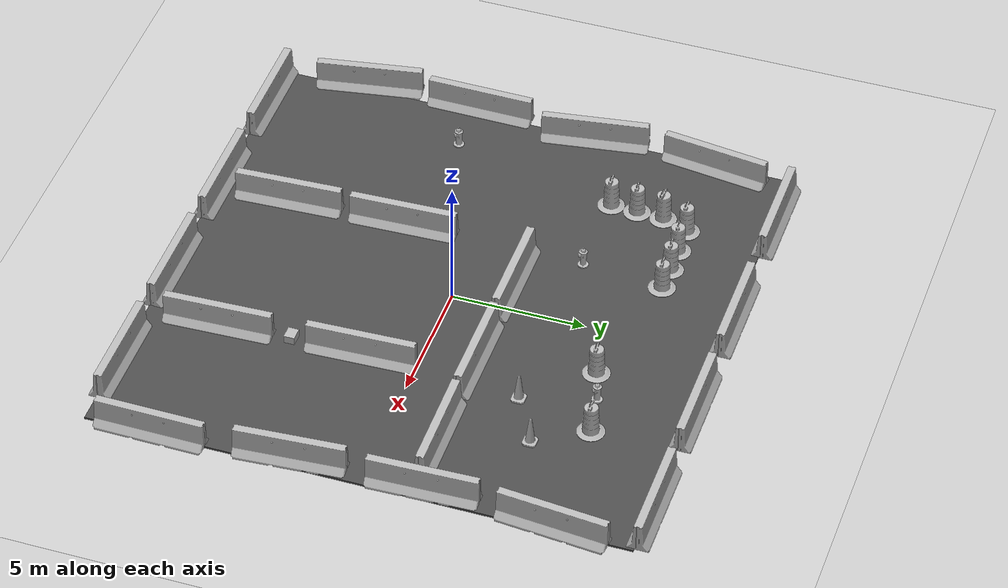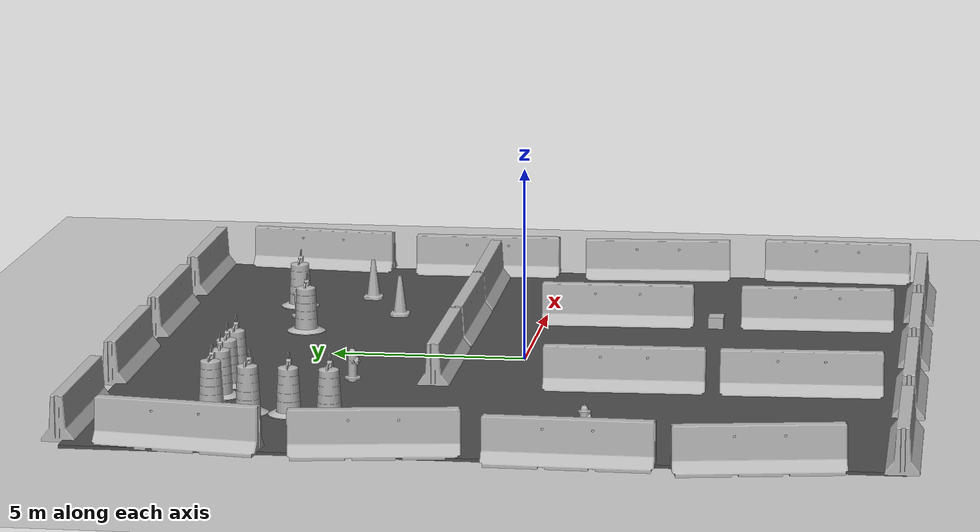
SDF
<sdf version="1.7">
 <world name="default">
  <light name="sun" type="directional">
   <pose>0 0 10 0 -0 0</pose>
   <diffuse>0.8 0.8 0.8 1</diffuse>
   <specular>0.2 0.2 0.2 1</specular>
   <attenuation>
    <range>1000</range>
    <constant>0.9</constant>
    <linear>0.01</linear>
    <quadratic>0.001</quadratic>
   </attenuation>
   <direction>-0.5 0.1 -0.9</direction>
   <spot><inner_angle>0</inner_angle><outer_angle>0</outer_angle><falloff>0</falloff></spot>
  </light>
  <model name="ground_plane">
   <static>1</static>
   <link name="link">
    <collision name="collision">
     <geometry><plane><normal>0 0 1</normal><size>100 100</size></plane></geometry>
     <surface><friction><ode><mu>100</mu><mu2>50</mu2></ode></friction></surface>
    </collision>
    <visual name="visual">
     <cast_shadows>0</cast_shadows>
     <geometry><plane><normal>0 0 1</normal><size>100 100</size></plane></geometry>
     <material>
      <script><uri>file://media/materials/scripts/gazebo.material</uri><name>Gazebo/Grey</name></script>
     </material>
    </visual>
    <velocity_decay><linear>0</linear><angular>0</angular></velocity_decay>
   </link>
  </model>
  <physics type="ode">
   <max_step_size>0.001</max_step_size>
   <real_time_factor>1</real_time_factor>
   <real_time_update_rate>1000</real_time_update_rate>
  </physics>
  <scene><ambient>0.4 0.4 0.4 1</ambient><background>0.7 0.7 0.7 1</background><shadows>1</shadows></scene>
  <model name="jersey_barrier">
   <static>1</static>
   <link name="link">
    <visual name="visual">
     <geometry><mesh><uri>model://jersey_barrier/meshes/jersey_barrier.dae</uri></mesh></geometry>
    </visual>
    <collision name="upright">
     <pose>0 0 0.5715 0 -0 0</pose>
     <geometry><box><size>4.06542 0.3063 1.143</size></box></geometry>
    </collision>
    <collision name="base">
     <pose>0 0 0.032258 0 -0 0</pose>
     <geometry><box><size>4.06542 0.8107 0.064516</size></box></geometry>
    </collision>
    <collision name="base2">
     <pose>0 0 0.1 0 -0 0</pose>
     <geometry><box><size>4.06542 0.65 0.1</size></box></geometry>
    </collision>
    <collision name="base3">
     <pose>0 0 0.2 0 -0 0</pose>
     <geometry><box><size>4.06542 0.5 0.1</size></box></geometry>
    </collision>
    <collision name="left-angle">
     <pose>0 -0.224 0.2401 0.9 -0 0</pose>
     <geometry><box><size>4.06542 0.5 0.064516</size></box></geometry>
    </collision>
    <collision name="right-angle">
     <pose>0 0.224 0.2401 -0.9 0 0</pose>
     <geometry><box><size>4.06542 0.5 0.064516</size></box></geometry>
    </collision>
    <velocity_decay><linear>0</linear><angular>0</angular></velocity_decay>
   </link>
   <pose>-8 -10 0 0 -0 0</pose>
  </model>
  <model name="jersey_barrier_0">
   <static>1</static>
   <link name="link">
    <visual name="visual">
     <geometry><mesh><uri>model://jersey_barrier/meshes/jersey_barrier.dae</uri></mesh></geometry>
    </visual>
    <collision name="upright">
     <pose>0 0 0.5715 0 -0 0</pose>
     <geometry><box><size>4.06542 0.3063 1.143</size></box></geometry>
    </collision>
    <collision name="base">
     <pose>0 0 0.032258 0 -0 0</pose>
     <geometry><box><size>4.06542 0.8107 0.064516</size></box></geometry>
    </collision>
    <collision name="base2">
     <pose>0 0 0.1 0 -0 0</pose>
     <geometry><box><size>4.06542 0.65 0.1</size></box></geometry>
    </collision>
    <collision name="base3">
     <pose>0 0 0.2 0 -0 0</pose>
     <geometry><box><size>4.06542 0.5 0.1</size></box></geometry>
    </collision>
    <collision name="left-angle">
     <pose>0 -0.224 0.2401 0.9 -0 0</pose>
     <geometry><box><size>4.06542 0.5 0.064516</size></box></geometry>
    </collision>
    <collision name="right-angle">
     <pose>0 0.224 0.2401 -0.9 0 0</pose>
     <geometry><box><size>4.06542 0.5 0.064516</size></box></geometry>
    </collision>
    <velocity_decay><linear>0</linear><angular>0</angular></velocity_decay>
   </link>
   <pose>-3 -10 0 0 -0 0</pose>
  </model>
  <model name="jersey_barrier_1">
   <static>1</static>
   <link name="link">
    <visual name="visual">
     <geometry><mesh><uri>model://jersey_barrier/meshes/jersey_barrier.dae</uri></mesh></geometry>
    </visual>
    <collision name="upright">
     <pose>0 0 0.5715 0 -0 0</pose>
     <geometry><box><size>4.06542 0.3063 1.143</size></box></geometry>
    </collision>
    <collision name="base">
     <pose>0 0 0.032258 0 -0 0</pose>
     <geometry><box><size>4.06542 0.8107 0.064516</size></box></geometry>
    </collision>
    <collision name="base2">
     <pose>0 0 0.1 0 -0 0</pose>
     <geometry><box><size>4.06542 0.65 0.1</size></box></geometry>
    </collision>
    <collision name="base3">
     <pose>0 0 0.2 0 -0 0</pose>
     <geometry><box><size>4.06542 0.5 0.1</size></box></geometry>
    </collision>
    <collision name="left-angle">
     <pose>0 -0.224 0.2401 0.9 -0 0</pose>
     <geometry><box><size>4.06542 0.5 0.064516</size></box></geometry>
    </collision>
    <collision name="right-angle">
     <pose>0 0.224 0.2401 -0.9 0 0</pose>
     <geometry><box><size>4.06542 0.5 0.064516</size></box></geometry>
    </collision>
    <velocity_decay><linear>0</linear><angular>0</angular></velocity_decay>
   </link>
   <pose>2 -10 0 0 -0 0</pose>
  </model>
  <model name="jersey_barrier_2">
   <static>1</static>
   <link name="link">
    <visual name="visual">
     <geometry><mesh><uri>model://jersey_barrier/meshes/jersey_barrier.dae</uri></mesh></geometry>
    </visual>
    <collision name="upright">
     <pose>0 0 0.5715 0 -0 0</pose>
     <geometry><box><size>4.06542 0.3063 1.143</size></box></geometry>
    </collision>
    <collision name="base">
     <pose>0 0 0.032258 0 -0 0</pose>
     <geometry><box><size>4.06542 0.8107 0.064516</size></box></geometry>
    </collision>
    <collision name="base2">
     <pose>0 0 0.1 0 -0 0</pose>
     <geometry><box><size>4.06542 0.65 0.1</size></box></geometry>
    </collision>
    <collision name="base3">
     <pose>0 0 0.2 0 -0 0</pose>
     <geometry><box><size>4.06542 0.5 0.1</size></box></geometry>
    </collision>
    <collision name="left-angle">
     <pose>0 -0.224 0.2401 0.9 -0 0</pose>
     <geometry><box><size>4.06542 0.5 0.064516</size></box></geometry>
    </collision>
    <collision name="right-angle">
     <pose>0 0.224 0.2401 -0.9 0 0</pose>
     <geometry><box><size>4.06542 0.5 0.064516</size></box></geometry>
    </collision>
    <velocity_decay><linear>0</linear><angular>0</angular></velocity_decay>
   </link>
   <pose>7 -10 0 0 -0 0</pose>
  </model>
  <model name="jersey_barrier_3">
   <static>1</static>
   <link name="link">
    <visual name="visual">
     <geometry><mesh><uri>model://jersey_barrier/meshes/jersey_barrier.dae</uri></mesh></geometry>
    </visual>
    <collision name="upright">
     <pose>0 0 0.5715 0 -0 0</pose>
     <geometry><box><size>4.06542 0.3063 1.143</size></box></geometry>
    </collision>
    <collision name="base">
     <pose>0 0 0.032258 0 -0 0</pose>
     <geometry><box><size>4.06542 0.8107 0.064516</size></box></geometry>
    </collision>
    <collision name="base2">
     <pose>0 0 0.1 0 -0 0</pose>
     <geometry><box><size>4.06542 0.65 0.1</size></box></geometry>
    </collision>
    <collision name="base3">
     <pose>0 0 0.2 0 -0 0</pose>
     <geometry><box><size>4.06542 0.5 0.1</size></box></geometry>
    </collision>
    <collision name="left-angle">
     <pose>0 -0.224 0.2401 0.9 -0 0</pose>
     <geometry><box><size>4.06542 0.5 0.064516</size></box></geometry>
    </collision>
    <collision name="right-angle">
     <pose>0 0.224 0.2401 -0.9 0 0</pose>
     <geometry><box><size>4.06542 0.5 0.064516</size></box></geometry>
    </collision>
    <velocity_decay><linear>0</linear><angular>0</angular></velocity_decay>
   </link>
   <pose>-7.50675 10 0 0 -0 0</pose>
  </model>
  <model name="jersey_barrier_4">
   <static>1</static>
   <link name="link">
    <visual name="visual">
     <geometry><mesh><uri>model://jersey_barrier/meshes/jersey_barrier.dae</uri></mesh></geometry>
    </visual>
    <collision name="upright">
     <pose>0 0 0.5715 0 -0 0</pose>
     <geometry><box><size>4.06542 0.3063 1.143</size></box></geometry>
    </collision>
    <collision name="base">
     <pose>0 0 0.032258 0 -0 0</pose>
     <geometry><box><size>4.06542 0.8107 0.064516</size></box></geometry>
    </collision>
    <collision name="base2">
     <pose>0 0 0.1 0 -0 0</pose>
     <geometry><box><size>4.06542 0.65 0.1</size></box></geometry>
    </collision>
    <collision name="base3">
     <pose>0 0 0.2 0 -0 0</pose>
     <geometry><box><size>4.06542 0.5 0.1</size></box></geometry>
    </collision>
    <collision name="left-angle">
     <pose>0 -0.224 0.2401 0.9 -0 0</pose>
     <geometry><box><size>4.06542 0.5 0.064516</size></box></geometry>
    </collision>
    <collision name="right-angle">
     <pose>0 0.224 0.2401 -0.9 0 0</pose>
     <geometry><box><size>4.06542 0.5 0.064516</size></box></geometry>
    </collision>
    <velocity_decay><linear>0</linear><angular>0</angular></velocity_decay>
   </link>
   <pose>-2 10 0 0 -0 0</pose>
  </model>
  <model name="jersey_barrier_5">
   <static>1</static>
   <link name="link">
    <visual name="visual">
     <geometry><mesh><uri>model://jersey_barrier/meshes/jersey_barrier.dae</uri></mesh></geometry>
    </visual>
    <collision name="upright">
     <pose>0 0 0.5715 0 -0 0</pose>
     <geometry><box><size>4.06542 0.3063 1.143</size></box></geometry>
    </collision>
    <collision name="base">
     <pose>0 0 0.032258 0 -0 0</pose>
     <geometry><box><size>4.06542 0.8107 0.064516</size></box></geometry>
    </collision>
    <collision name="base2">
     <pose>0 0 0.1 0 -0 0</pose>
     <geometry><box><size>4.06542 0.65 0.1</size></box></geometry>
    </collision>
    <collision name="base3">
     <pose>0 0 0.2 0 -0 0</pose>
     <geometry><box><size>4.06542 0.5 0.1</size></box></geometry>
    </collision>
    <collision name="left-angle">
     <pose>0 -0.224 0.2401 0.9 -0 0</pose>
     <geometry><box><size>4.06542 0.5 0.064516</size></box></geometry>
    </collision>
    <collision name="right-angle">
     <pose>0 0.224 0.2401 -0.9 0 0</pose>
     <geometry><box><size>4.06542 0.5 0.064516</size></box></geometry>
    </collision>
    <velocity_decay><linear>0</linear><angular>0</angular></velocity_decay>
   </link>
   <pose>3 10 0 0 -0 0</pose>
  </model>
  <model name="jersey_barrier_6">
   <static>1</static>
   <link name="link">
    <visual name="visual">
     <geometry><mesh><uri>model://jersey_barrier/meshes/jersey_barrier.dae</uri></mesh></geometry>
    </visual>
    <collision name="upright">
     <pose>0 0 0.5715 0 -0 0</pose>
     <geometry><box><size>4.06542 0.3063 1.143</size></box></geometry>
    </collision>
    <collision name="base">
     <pose>0 0 0.032258 0 -0 0</pose>
     <geometry><box><size>4.06542 0.8107 0.064516</size></box></geometry>
    </collision>
    <collision name="base2">
     <pose>0 0 0.1 0 -0 0</pose>
     <geometry><box><size>4.06542 0.65 0.1</size></box></geometry>
    </collision>
    <collision name="base3">
     <pose>0 0 0.2 0 -0 0</pose>
     <geometry><box><size>4.06542 0.5 0.1</size></box></geometry>
    </collision>
    <collision name="left-angle">
     <pose>0 -0.224 0.2401 0.9 -0 0</pose>
     <geometry><box><size>4.06542 0.5 0.064516</size></box></geometry>
    </collision>
    <collision name="right-angle">
     <pose>0 0.224 0.2401 -0.9 0 0</pose>
     <geometry><box><size>4.06542 0.5 0.064516</size></box></geometry>
    </collision>
    <velocity_decay><linear>0</linear><angular>0</angular></velocity_decay>
   </link>
   <pose>8 10 0 0 -0 0</pose>
  </model>
  <model name="jersey_barrier_7">
   <static>1</static>
   <link name="link">
    <visual name="visual">
     <geometry><mesh><uri>model://jersey_barrier/meshes/jersey_barrier.dae</uri></mesh></geometry>
    </visual>
    <collision name="upright">
     <pose>0 0 0.5715 0 -0 0</pose>
     <geometry><box><size>4.06542 0.3063 1.143</size></box></geometry>
    </collision>
    <collision name="base">
     <pose>0 0 0.032258 0 -0 0</pose>
     <geometry><box><size>4.06542 0.8107 0.064516</size></box></geometry>
    </collision>
    <collision name="base2">
     <pose>0 0 0.1 0 -0 0</pose>
     <geometry><box><size>4.06542 0.65 0.1</size></box></geometry>
    </collision>
    <collision name="base3">
     <pose>0 0 0.2 0 -0 0</pose>
     <geometry><box><size>4.06542 0.5 0.1</size></box></geometry>
    </collision>
    <collision name="left-angle">
     <pose>0 -0.224 0.2401 0.9 -0 0</pose>
     <geometry><box><size>4.06542 0.5 0.064516</size></box></geometry>
    </collision>
    <collision name="right-angle">
     <pose>0 0.224 0.2401 -0.9 0 0</pose>
     <geometry><box><size>4.06542 0.5 0.064516</size></box></geometry>
    </collision>
    <velocity_decay><linear>0</linear><angular>0</angular></velocity_decay>
   </link>
   <pose>9.74902 -2.57759 0 0 -0 1.64</pose>
  </model>
  <model name="jersey_barrier_8">
   <static>1</static>
   <link name="link">
    <visual name="visual">
     <geometry><mesh><uri>model://jersey_barrier/meshes/jersey_barrier.dae</uri></mesh></geometry>
    </visual>
    <collision name="upright">
     <pose>0 0 0.5715 0 -0 0</pose>
     <geometry><box><size>4.06542 0.3063 1.143</size></box></geometry>
    </collision>
    <collision name="base">
     <pose>0 0 0.032258 0 -0 0</pose>
     <geometry><box><size>4.06542 0.8107 0.064516</size></box></geometry>
    </collision>
    <collision name="base2">
     <pose>0 0 0.1 0 -0 0</pose>
     <geometry><box><size>4.06542 0.65 0.1</size></box></geometry>
    </collision>
    <collision name="base3">
     <pose>0 0 0.2 0 -0 0</pose>
     <geometry><box><size>4.06542 0.5 0.1</size></box></geometry>
    </collision>
    <collision name="left-angle">
     <pose>0 -0.224 0.2401 0.9 -0 0</pose>
     <geometry><box><size>4.06542 0.5 0.064516</size></box></geometry>
    </collision>
    <collision name="right-angle">
     <pose>0 0.224 0.2401 -0.9 0 0</pose>
     <geometry><box><size>4.06542 0.5 0.064516</size></box></geometry>
    </collision>
    <velocity_decay><linear>0</linear><angular>0</angular></velocity_decay>
   </link>
   <pose>9.70141 2.24369 0 0 -0 1.6</pose>
  </model>
  <model name="jersey_barrier_9">
   <static>1</static>
   <link name="link">
    <visual name="visual">
     <geometry><mesh><uri>model://jersey_barrier/meshes/jersey_barrier.dae</uri></mesh></geometry>
    </visual>
    <collision name="upright">
     <pose>0 0 0.5715 0 -0 0</pose>
     <geometry><box><size>4.06542 0.3063 1.143</size></box></geometry>
    </collision>
    <collision name="base">
     <pose>0 0 0.032258 0 -0 0</pose>
     <geometry><box><size>4.06542 0.8107 0.064516</size></box></geometry>
    </collision>
    <collision name="base2">
     <pose>0 0 0.1 0 -0 0</pose>
     <geometry><box><size>4.06542 0.65 0.1</size></box></geometry>
    </collision>
    <collision name="base3">
     <pose>0 0 0.2 0 -0 0</pose>
     <geometry><box><size>4.06542 0.5 0.1</size></box></geometry>
    </collision>
    <collision name="left-angle">
     <pose>0 -0.224 0.2401 0.9 -0 0</pose>
     <geometry><box><size>4.06542 0.5 0.064516</size></box></geometry>
    </collision>
    <collision name="right-angle">
     <pose>0 0.224 0.2401 -0.9 0 0</pose>
     <geometry><box><size>4.06542 0.5 0.064516</size></box></geometry>
    </collision>
    <velocity_decay><linear>0</linear><angular>0</angular></velocity_decay>
   </link>
   <pose>-10.0607 -6.69856 0 0 0 -1.4</pose>
  </model>
  <model name="jersey_barrier_10">
   <static>1</static>
   <link name="link">
    <visual name="visual">
     <geometry><mesh><uri>model://jersey_barrier/meshes/jersey_barrier.dae</uri></mesh></geometry>
    </visual>
    <collision name="upright">
     <pose>0 0 0.5715 0 -0 0</pose>
     <geometry><box><size>4.06542 0.3063 1.143</size></box></geometry>
    </collision>
    <collision name="base">
     <pose>0 0 0.032258 0 -0 0</pose>
     <geometry><box><size>4.06542 0.8107 0.064516</size></box></geometry>
    </collision>
    <collision name="base2">
     <pose>0 0 0.1 0 -0 0</pose>
     <geometry><box><size>4.06542 0.65 0.1</size></box></geometry>
    </collision>
    <collision name="base3">
     <pose>0 0 0.2 0 -0 0</pose>
     <geometry><box><size>4.06542 0.5 0.1</size></box></geometry>
    </collision>
    <collision name="left-angle">
     <pose>0 -0.224 0.2401 0.9 -0 0</pose>
     <geometry><box><size>4.06542 0.5 0.064516</size></box></geometry>
    </collision>
    <collision name="right-angle">
     <pose>0 0.224 0.2401 -0.9 0 0</pose>
     <geometry><box><size>4.06542 0.5 0.064516</size></box></geometry>
    </collision>
    <velocity_decay><linear>0</linear><angular>0</angular></velocity_decay>
   </link>
   <pose>-10.0774 -2.27159 0 0 -0 1.56</pose>
  </model>
  <model name="jersey_barrier_11">
   <static>1</static>
   <link name="link">
    <visual name="visual">
     <geometry><mesh><uri>model://jersey_barrier/meshes/jersey_barrier.dae</uri></mesh></geometry>
    </visual>
    <collision name="upright">
     <pose>0 0 0.5715 0 -0 0</pose>
     <geometry><box><size>4.06542 0.3063 1.143</size></box></geometry>
    </collision>
    <collision name="base">
     <pose>0 0 0.032258 0 -0 0</pose>
     <geometry><box><size>4.06542 0.8107 0.064516</size></box></geometry>
    </collision>
    <collision name="base2">
     <pose>0 0 0.1 0 -0 0</pose>
     <geometry><box><size>4.06542 0.65 0.1</size></box></geometry>
    </collision>
    <collision name="base3">
     <pose>0 0 0.2 0 -0 0</pose>
     <geometry><box><size>4.06542 0.5 0.1</size></box></geometry>
    </collision>
    <collision name="left-angle">
     <pose>0 -0.224 0.2401 0.9 -0 0</pose>
     <geometry><box><size>4.06542 0.5 0.064516</size></box></geometry>
    </collision>
    <collision name="right-angle">
     <pose>0 0.224 0.2401 -0.9 0 0</pose>
     <geometry><box><size>4.06542 0.5 0.064516</size></box></geometry>
    </collision>
    <velocity_decay><linear>0</linear><angular>0</angular></velocity_decay>
   </link>
   <pose>-9.77013 2.34791 0 0 -0 1.72</pose>
  </model>
  <model name="jersey_barrier_12">
   <static>1</static>
   <link name="link">
    <visual name="visual">
     <geometry><mesh><uri>model://jersey_barrier/meshes/jersey_barrier.dae</uri></mesh></geometry>
    </visual>
    <collision name="upright">
     <pose>0 0 0.5715 0 -0 0</pose>
     <geometry><box><size>4.06542 0.3063 1.143</size></box></geometry>
    </collision>
    <collision name="base">
     <pose>0 0 0.032258 0 -0 0</pose>
     <geometry><box><size>4.06542 0.8107 0.064516</size></box></geometry>
    </collision>
    <collision name="base2">
     <pose>0 0 0.1 0 -0 0</pose>
     <geometry><box><size>4.06542 0.65 0.1</size></box></geometry>
    </collision>
    <collision name="base3">
     <pose>0 0 0.2 0 -0 0</pose>
     <geometry><box><size>4.06542 0.5 0.1</size></box></geometry>
    </collision>
    <collision name="left-angle">
     <pose>0 -0.224 0.2401 0.9 -0 0</pose>
     <geometry><box><size>4.06542 0.5 0.064516</size></box></geometry>
    </collision>
    <collision name="right-angle">
     <pose>0 0.224 0.2401 -0.9 0 0</pose>
     <geometry><box><size>4.06542 0.5 0.064516</size></box></geometry>
    </collision>
    <velocity_decay><linear>0</linear><angular>0</angular></velocity_decay>
   </link>
   <pose>10.0879 -7.62159 0 0 -0 1.56</pose>
  </model>
  <model name="jersey_barrier_13">
   <static>1</static>
   <link name="link">
    <visual name="visual">
     <geometry><mesh><uri>model://jersey_barrier/meshes/jersey_barrier.dae</uri></mesh></geometry>
    </visual>
    <collision name="upright">
     <pose>0 0 0.5715 0 -0 0</pose>
     <geometry><box><size>4.06542 0.3063 1.143</size></box></geometry>
    </collision>
    <collision name="base">
     <pose>0 0 0.032258 0 -0 0</pose>
     <geometry><box><size>4.06542 0.8107 0.064516</size></box></geometry>
    </collision>
    <collision name="base2">
     <pose>0 0 0.1 0 -0 0</pose>
     <geometry><box><size>4.06542 0.65 0.1</size></box></geometry>
    </collision>
    <collision name="base3">
     <pose>0 0 0.2 0 -0 0</pose>
     <geometry><box><size>4.06542 0.5 0.1</size></box></geometry>
    </collision>
    <collision name="left-angle">
     <pose>0 -0.224 0.2401 0.9 -0 0</pose>
     <geometry><box><size>4.06542 0.5 0.064516</size></box></geometry>
    </collision>
    <collision name="right-angle">
     <pose>0 0.224 0.2401 -0.9 0 0</pose>
     <geometry><box><size>4.06542 0.5 0.064516</size></box></geometry>
    </collision>
    <velocity_decay><linear>0</linear><angular>0</angular></velocity_decay>
   </link>
   <pose>10 7 0 0 -0 1.48</pose>
  </model>
  <model name="jersey_barrier_14">
   <static>1</static>
   <link name="link">
    <visual name="visual">
     <geometry><mesh><uri>model://jersey_barrier/meshes/jersey_barrier.dae</uri></mesh></geometry>
    </visual>
    <collision name="upright">
     <pose>0 0 0.5715 0 -0 0</pose>
     <geometry><box><size>4.06542 0.3063 1.143</size></box></geometry>
    </collision>
    <collision name="base">
     <pose>0 0 0.032258 0 -0 0</pose>
     <geometry><box><size>4.06542 0.8107 0.064516</size></box></geometry>
    </collision>
    <collision name="base2">
     <pose>0 0 0.1 0 -0 0</pose>
     <geometry><box><size>4.06542 0.65 0.1</size></box></geometry>
    </collision>
    <collision name="base3">
     <pose>0 0 0.2 0 -0 0</pose>
     <geometry><box><size>4.06542 0.5 0.1</size></box></geometry>
    </collision>
    <collision name="left-angle">
     <pose>0 -0.224 0.2401 0.9 -0 0</pose>
     <geometry><box><size>4.06542 0.5 0.064516</size></box></geometry>
    </collision>
    <collision name="right-angle">
     <pose>0 0.224 0.2401 -0.9 0 0</pose>
     <geometry><box><size>4.06542 0.5 0.064516</size></box></geometry>
    </collision>
    <velocity_decay><linear>0</linear><angular>0</angular></velocity_decay>
   </link>
   <pose>-9.64482 7.05946 0 0 -0 1.44</pose>
  </model>
  <model name="fire_hydrant">
   <static>1</static>
   <link name="link">
    <collision name="collision">
     <geometry><mesh><uri>model://fire_hydrant/meshes/fire_hydrant.dae</uri></mesh></geometry>
    </collision>
    <visual name="visual">
     <geometry><mesh><uri>model://fire_hydrant/meshes/fire_hydrant.dae</uri></mesh></geometry>
    </visual>
    <velocity_decay><linear>0</linear><angular>0</angular></velocity_decay>
   </link>
   <pose>3.56194 6.57655 0 0 -0 0</pose>
  </model>
  <model name="fire_hydrant_0">
   <static>1</static>
   <link name="link">
    <collision name="collision">
     <geometry><mesh><uri>model://fire_hydrant/meshes/fire_hydrant.dae</uri></mesh></geometry>
    </collision>
    <visual name="visual">
     <geometry><mesh><uri>model://fire_hydrant/meshes/fire_hydrant.dae</uri></mesh></geometry>
    </visual>
    <velocity_decay><linear>0</linear><angular>0</angular></velocity_decay>
   </link>
   <pose>-3 4 0 0 -0 0</pose>
  </model>
  <model name="fire_hydrant_1">
   <static>1</static>
   <link name="link">
    <collision name="collision">
     <geometry><mesh><uri>model://fire_hydrant/meshes/fire_hydrant.dae</uri></mesh></geometry>
    </collision>
    <visual name="visual">
     <geometry><mesh><uri>model://fire_hydrant/meshes/fire_hydrant.dae</uri></mesh></geometry>
    </visual>
    <velocity_decay><linear>0</linear><angular>0</angular></velocity_decay>
   </link>
   <pose>-7.90686 -2.41363 0 0 -0 0</pose>
  </model>
  <model name="jersey_barrier_15">
   <static>1</static>
   <link name="link">
    <visual name="visual">
     <geometry><mesh><uri>model://jersey_barrier/meshes/jersey_barrier.dae</uri></mesh></geometry>
    </visual>
    <collision name="upright">
     <pose>0 0 0.5715 0 -0 0</pose>
     <geometry><box><size>4.06542 0.3063 1.143</size></box></geometry>
    </collision>
    <collision name="base">
     <pose>0 0 0.032258 0 -0 0</pose>
     <geometry><box><size>4.06542 0.8107 0.064516</size></box></geometry>
    </collision>
    <collision name="base2">
     <pose>0 0 0.1 0 -0 0</pose>
     <geometry><box><size>4.06542 0.65 0.1</size></box></geometry>
    </collision>
    <collision name="base3">
     <pose>0 0 0.2 0 -0 0</pose>
     <geometry><box><size>4.06542 0.5 0.1</size></box></geometry>
    </collision>
    <collision name="left-angle">
     <pose>0 -0.224 0.2401 0.9 -0 0</pose>
     <geometry><box><size>4.06542 0.5 0.064516</size></box></geometry>
    </collision>
    <collision name="right-angle">
     <pose>0 0.224 0.2401 -0.9 0 0</pose>
     <geometry><box><size>4.06542 0.5 0.064516</size></box></geometry>
    </collision>
    <velocity_decay><linear>0</linear><angular>0</angular></velocity_decay>
   </link>
   <pose>7.19227 1.93681 0 0 0 -3.1317</pose>
  </model>
  <model name="Construction Cone">
   <link name="link">
    <collision name="collision">
     <geometry>
      <mesh><scale>10 10 10</scale><uri>model://construction_cone/meshes/construction_cone.dae</uri></mesh>
     </geometry>
    </collision>
    <visual name="visual">
     <geometry>
      <mesh><scale>10 10 10</scale><uri>model://construction_cone/meshes/construction_cone.dae</uri></mesh>
     </geometry>
    </visual>
    <velocity_decay><linear>0</linear><angular>0</angular></velocity_decay>
    <inertial>
     <inertia><ixx>1</ixx><ixy>0</ixy><ixz>0</ixz><iyy>1</iyy><iyz>0</iyz><izz>1</izz></inertia>
     <mass>1</mass>
    </inertial>
   </link>
   <pose>6.25135 4.98276 0.05 1e-06 -1e-06 0</pose>
   <static>0</static>
  </model>
  <model name="Construction Barrel">
   <link name="link">
    <inertial>
     <pose>0 0 0.4 0 -0 0</pose>
     <mass>500</mass>
     <inertia><ixx>51.2096</ixx><iyy>51.2096</iyy><izz>25</izz><ixy>0</ixy><ixz>0</ixz><iyz>0</iyz></inertia>
    </inertial>
    <collision name="collision">
     <geometry><mesh><uri>model://construction_barrel/meshes/construction_barrel.dae</uri></mesh></geometry>
    </collision>
    <visual name="visual">
     <geometry><mesh><uri>model://construction_barrel/meshes/construction_barrel.dae</uri></mesh></geometry>
    </visual>
    <velocity_decay><linear>0</linear><angular>0</angular></velocity_decay>
   </link>
   <pose>5.0829 6.82068 0.049999 3e-06 -0 0.00059</pose>
   <static>0</static>
  </model>
  <model name="Construction Cone_0">
   <link name="link">
    <collision name="collision">
     <geometry>
      <mesh><scale>10 10 10</scale><uri>model://construction_cone/meshes/construction_cone.dae</uri></mesh>
     </geometry>
    </collision>
    <visual name="visual">
     <geometry>
      <mesh><scale>10 10 10</scale><uri>model://construction_cone/meshes/construction_cone.dae</uri></mesh>
     </geometry>
    </visual>
    <velocity_decay><linear>0</linear><angular>0</angular></velocity_decay>
    <inertial>
     <inertia><ixx>1</ixx><ixy>0</ixy><ixz>0</ixz><iyy>1</iyy><iyz>0</iyz><izz>1</izz></inertia>
     <mass>1</mass>
    </inertial>
   </link>
   <pose>4.32471 3.94071 0.05 -0 -0 -0.007012</pose>
   <static>0</static>
  </model>
  <model name="Construction Barrel_0">
   <link name="link">
    <inertial>
     <pose>0 0 0.4 0 -0 0</pose>
     <mass>500</mass>
     <inertia><ixx>51.2096</ixx><iyy>51.2096</iyy><izz>25</izz><ixy>0</ixy><ixz>0</ixz><iyz>0</iyz></inertia>
    </inertial>
    <collision name="collision">
     <geometry><mesh><uri>model://construction_barrel/meshes/construction_barrel.dae</uri></mesh></geometry>
    </collision>
    <visual name="visual">
     <geometry><mesh><uri>model://construction_barrel/meshes/construction_barrel.dae</uri></mesh></geometry>
    </visual>
    <velocity_decay><linear>0</linear><angular>0</angular></velocity_decay>
   </link>
   <pose>2.21383 6.13016 0.049999 -1e-06 -2e-06 0.000223</pose>
   <static>0</static>
  </model>
  <model name="asphalt_plane">
   <static>1</static>
   <link name="link">
    <collision name="collision"><geometry><box><size>20 20 0.1</size></box></geometry></collision>
    <visual name="visual">
     <cast_shadows>0</cast_shadows>
     <geometry><box><size>20 20 0.1</size></box></geometry>
     <material>
      <script>
       <uri>model://asphalt_plane/materials/scripts</uri>
       <uri>model://asphalt_plane/materials/textures</uri>
       <name>vrc/asphalt</name>
      </script>
     </material>
    </visual>
    <velocity_decay><linear>0</linear><angular>0</angular></velocity_decay>
   </link>
   <pose>0.076733 -0.110379 0 0 -0 0</pose>
  </model>
  <model name="Construction Barrel_1">
   <link name="link">
    <inertial>
     <pose>0 0 0.4 0 -0 0</pose>
     <mass>500</mass>
     <inertia><ixx>51.2096</ixx><iyy>51.2096</iyy><izz>25</izz><ixy>0</ixy><ixz>0</ixz><iyz>0</iyz></inertia>
    </inertial>
    <collision name="collision">
     <geometry><mesh><uri>model://construction_barrel/meshes/construction_barrel.dae</uri></mesh></geometry>
    </collision>
    <visual name="visual">
     <geometry><mesh><uri>model://construction_barrel/meshes/construction_barrel.dae</uri></mesh></geometry>
    </visual>
    <velocity_decay><linear>0</linear><angular>0</angular></velocity_decay>
   </link>
   <pose>-6.50469 3.98269 0.049999 -1e-06 -3e-06 -0.009416</pose>
   <static>0</static>
  </model>
  <model name="Construction Barrel_2">
   <link name="link">
    <inertial>
     <pose>0 0 0.4 0 -0 0</pose>
     <mass>500</mass>
     <inertia><ixx>51.2096</ixx><iyy>51.2096</iyy><izz>25</izz><ixy>0</ixy><ixz>0</ixz><iyz>0</iyz></inertia>
    </inertial>
    <collision name="collision">
     <geometry><mesh><uri>model://construction_barrel/meshes/construction_barrel.dae</uri></mesh></geometry>
    </collision>
    <visual name="visual">
     <geometry><mesh><uri>model://construction_barrel/meshes/construction_barrel.dae</uri></mesh></geometry>
    </visual>
    <velocity_decay><linear>0</linear><angular>0</angular></velocity_decay>
   </link>
   <pose>-6.45052 4.99649 0.049999 4e-06 -0 0.06514</pose>
   <static>0</static>
  </model>
  <model name="Construction Barrel_3">
   <link name="link">
    <inertial>
     <pose>0 0 0.4 0 -0 0</pose>
     <mass>500</mass>
     <inertia><ixx>51.2096</ixx><iyy>51.2096</iyy><izz>25</izz><ixy>0</ixy><ixz>0</ixz><iyz>0</iyz></inertia>
    </inertial>
    <collision name="collision">
     <geometry><mesh><uri>model://construction_barrel/meshes/construction_barrel.dae</uri></mesh></geometry>
    </collision>
    <visual name="visual">
     <geometry><mesh><uri>model://construction_barrel/meshes/construction_barrel.dae</uri></mesh></geometry>
    </visual>
    <velocity_decay><linear>0</linear><angular>0</angular></velocity_decay>
   </link>
   <pose>-6.40163 6.01122 0.049999 -1e-06 -5e-06 -0.120611</pose>
   <static>0</static>
  </model>
  <model name="Construction Barrel_4">
   <link name="link">
    <inertial>
     <pose>0 0 0.4 0 -0 0</pose>
     <mass>500</mass>
     <inertia><ixx>51.2096</ixx><iyy>51.2096</iyy><izz>25</izz><ixy>0</ixy><ixz>0</ixz><iyz>0</iyz></inertia>
    </inertial>
    <collision name="collision">
     <geometry><mesh><uri>model://construction_barrel/meshes/construction_barrel.dae</uri></mesh></geometry>
    </collision>
    <visual name="visual">
     <geometry><mesh><uri>model://construction_barrel/meshes/construction_barrel.dae</uri></mesh></geometry>
    </visual>
    <velocity_decay><linear>0</linear><angular>0</angular></velocity_decay>
   </link>
   <pose>-6.00621 7.00888 0.049999 -1e-06 -2e-06 -0.04937</pose>
   <static>0</static>
  </model>
  <model name="Construction Barrel_5">
   <link name="link">
    <inertial>
     <pose>0 0 0.4 0 -0 0</pose>
     <mass>500</mass>
     <inertia><ixx>51.2096</ixx><iyy>51.2096</iyy><izz>25</izz><ixy>0</ixy><ixz>0</ixz><iyz>0</iyz></inertia>
    </inertial>
    <collision name="collision">
     <geometry><mesh><uri>model://construction_barrel/meshes/construction_barrel.dae</uri></mesh></geometry>
    </collision>
    <visual name="visual">
     <geometry><mesh><uri>model://construction_barrel/meshes/construction_barrel.dae</uri></mesh></geometry>
    </visual>
    <velocity_decay><linear>0</linear><angular>0</angular></velocity_decay>
   </link>
   <pose>-4.87553 7.00823 0.049999 3e-06 -0 0.146257</pose>
   <static>0</static>
  </model>
  <model name="Construction Barrel_6">
   <link name="link">
    <inertial>
     <pose>0 0 0.4 0 -0 0</pose>
     <mass>500</mass>
     <inertia><ixx>51.2096</ixx><iyy>51.2096</iyy><izz>25</izz><ixy>0</ixy><ixz>0</ixz><iyz>0</iyz></inertia>
    </inertial>
    <collision name="collision">
     <geometry><mesh><uri>model://construction_barrel/meshes/construction_barrel.dae</uri></mesh></geometry>
    </collision>
    <visual name="visual">
     <geometry><mesh><uri>model://construction_barrel/meshes/construction_barrel.dae</uri></mesh></geometry>
    </visual>
    <velocity_decay><linear>0</linear><angular>0</angular></velocity_decay>
   </link>
   <pose>-3.8061 7.0468 0.061792 -0.003046 -0.023126 0.053021</pose>
   <static>0</static>
  </model>
  <model name="Construction Barrel_7">
   <link name="link">
    <inertial>
     <pose>0 0 0.4 0 -0 0</pose>
     <mass>500</mass>
     <inertia><ixx>51.2096</ixx><iyy>51.2096</iyy><izz>25</izz><ixy>0</ixy><ixz>0</ixz><iyz>0</iyz></inertia>
    </inertial>
    <collision name="collision">
     <geometry><mesh><uri>model://construction_barrel/meshes/construction_barrel.dae</uri></mesh></geometry>
    </collision>
    <visual name="visual">
     <geometry><mesh><uri>model://construction_barrel/meshes/construction_barrel.dae</uri></mesh></geometry>
    </visual>
    <velocity_decay><linear>0</linear><angular>0</angular></velocity_decay>
   </link>
   <pose>-2.80099 7.0401 0.049985 -3e-06 -1.6e-05 0.011703</pose>
   <static>0</static>
  </model>
  <gravity>0 0 -9.8</gravity>
  <magnetic_field>6e-06 2.3e-05 -4.2e-05</magnetic_field>
  <atmosphere type="adiabatic"/>
  <audio><device>default</device></audio>
  <spherical_coordinates>
   <surface_model>EARTH_WGS84</surface_model>
   <latitude_deg>0</latitude_deg>
   <longitude_deg>0</longitude_deg>
   <elevation>0</elevation>
   <heading_deg>0</heading_deg>
  </spherical_coordinates>
  <model name="jersey_barrier_16">
   <static>1</static>
   <link name="link">
    <visual name="visual">
     <geometry><mesh><uri>model://jersey_barrier/meshes/jersey_barrier.dae</uri></mesh></geometry>
    </visual>
    <collision name="upright">
     <pose>0 0 0.5715 0 -0 0</pose>
     <geometry><box><size>4.06542 0.3063 1.143</size></box></geometry>
    </collision>
    <collision name="base">
     <pose>0 0 0.032258 0 -0 0</pose>
     <geometry><box><size>4.06542 0.8107 0.064516</size></box></geometry>
    </collision>
    <collision name="base2">
     <pose>0 0 0.1 0 -0 0</pose>
     <geometry><box><size>4.06542 0.65 0.1</size></box></geometry>
    </collision>
    <collision name="base3">
     <pose>0 0 0.2 0 -0 0</pose>
     <geometry><box><size>4.06542 0.5 0.1</size></box></geometry>
    </collision>
    <collision name="left-angle">
     <pose>0 -0.224 0.2401 0.9 -0 0</pose>
     <geometry><box><size>4.06542 0.5 0.064516</size></box></geometry>
    </collision>
    <collision name="right-angle">
     <pose>0 0.224 0.2401 -0.9 0 0</pose>
     <geometry><box><size>4.06542 0.5 0.064516</size></box></geometry>
    </collision>
   </link>
   <pose>2.98614 1.91127 0 0 -0 0</pose>
  </model>
  <model name="jersey_barrier_17">
   <static>1</static>
   <link name="link">
    <visual name="visual">
     <geometry><mesh><uri>model://jersey_barrier/meshes/jersey_barrier.dae</uri></mesh></geometry>
    </visual>
    <collision name="upright">
     <pose>0 0 0.5715 0 -0 0</pose>
     <geometry><box><size>4.06542 0.3063 1.143</size></box></geometry>
    </collision>
    <collision name="base">
     <pose>0 0 0.032258 0 -0 0</pose>
     <geometry><box><size>4.06542 0.8107 0.064516</size></box></geometry>
    </collision>
    <collision name="base2">
     <pose>0 0 0.1 0 -0 0</pose>
     <geometry><box><size>4.06542 0.65 0.1</size></box></geometry>
    </collision>
    <collision name="base3">
     <pose>0 0 0.2 0 -0 0</pose>
     <geometry><box><size>4.06542 0.5 0.1</size></box></geometry>
    </collision>
    <collision name="left-angle">
     <pose>0 -0.224 0.2401 0.9 -0 0</pose>
     <geometry><box><size>4.06542 0.5 0.064516</size></box></geometry>
    </collision>
    <collision name="right-angle">
     <pose>0 0.224 0.2401 -0.9 0 0</pose>
     <geometry><box><size>4.06542 0.5 0.064516</size></box></geometry>
    </collision>
   </link>
   <pose>-1.23498 1.91916 0 0 -0 0</pose>
  </model>
  <model name="jersey_barrier_18">
   <static>1</static>
   <link name="link">
    <visual name="visual">
     <geometry><mesh><uri>model://jersey_barrier/meshes/jersey_barrier.dae</uri></mesh></geometry>
    </visual>
    <collision name="upright">
     <pose>0 0 0.5715 0 -0 0</pose>
     <geometry><box><size>4.06542 0.3063 1.143</size></box></geometry>
    </collision>
    <collision name="base">
     <pose>0 0 0.032258 0 -0 0</pose>
     <geometry><box><size>4.06542 0.8107 0.064516</size></box></geometry>
    </collision>
    <collision name="base2">
     <pose>0 0 0.1 0 -0 0</pose>
     <geometry><box><size>4.06542 0.65 0.1</size></box></geometry>
    </collision>
    <collision name="base3">
     <pose>0 0 0.2 0 -0 0</pose>
     <geometry><box><size>4.06542 0.5 0.1</size></box></geometry>
    </collision>
    <collision name="left-angle">
     <pose>0 -0.224 0.2401 0.9 -0 0</pose>
     <geometry><box><size>4.06542 0.5 0.064516</size></box></geometry>
    </collision>
    <collision name="right-angle">
     <pose>0 0.224 0.2401 -0.9 0 0</pose>
     <geometry><box><size>4.06542 0.5 0.064516</size></box></geometry>
    </collision>
   </link>
   <pose>4.23813 -7.34612 0 0 0 -1.53521</pose>
  </model>
  <model name="jersey_barrier_18_clone">
   <static>1</static>
   <link name="link">
    <visual name="visual">
     <geometry><mesh><uri>model://jersey_barrier/meshes/jersey_barrier.dae</uri></mesh></geometry>
    </visual>
    <collision name="upright">
     <pose>0 0 0.5715 0 -0 0</pose>
     <geometry><box><size>4.06542 0.3063 1.143</size></box></geometry>
    </collision>
    <collision name="base">
     <pose>0 0 0.032258 0 -0 0</pose>
     <geometry><box><size>4.06542 0.8107 0.064516</size></box></geometry>
    </collision>
    <collision name="base2">
     <pose>0 0 0.1 0 -0 0</pose>
     <geometry><box><size>4.06542 0.65 0.1</size></box></geometry>
    </collision>
    <collision name="base3">
     <pose>0 0 0.2 0 -0 0</pose>
     <geometry><box><size>4.06542 0.5 0.1</size></box></geometry>
    </collision>
    <collision name="left-angle">
     <pose>0 -0.224 0.2401 0.9 -0 0</pose>
     <geometry><box><size>4.06542 0.5 0.064516</size></box></geometry>
    </collision>
    <collision name="right-angle">
     <pose>0 0.224 0.2401 -0.9 0 0</pose>
     <geometry><box><size>4.06542 0.5 0.064516</size></box></geometry>
    </collision>
   </link>
   <pose>4.05617 -2.01578 0 0 0 -1.53521</pose>
  </model>
  <model name="jersey_barrier_19">
   <static>1</static>
   <link name="link">
    <visual name="visual">
     <geometry><mesh><uri>model://jersey_barrier/meshes/jersey_barrier.dae</uri></mesh></geometry>
    </visual>
    <collision name="upright">
     <pose>0 0 0.5715 0 -0 0</pose>
     <geometry><box><size>4.06542 0.3063 1.143</size></box></geometry>
    </collision>
    <collision name="base">
     <pose>0 0 0.032258 0 -0 0</pose>
     <geometry><box><size>4.06542 0.8107 0.064516</size></box></geometry>
    </collision>
    <collision name="base2">
     <pose>0 0 0.1 0 -0 0</pose>
     <geometry><box><size>4.06542 0.65 0.1</size></box></geometry>
    </collision>
    <collision name="base3">
     <pose>0 0 0.2 0 -0 0</pose>
     <geometry><box><size>4.06542 0.5 0.1</size></box></geometry>
    </collision>
    <collision name="left-angle">
     <pose>0 -0.224 0.2401 0.9 -0 0</pose>
     <geometry><box><size>4.06542 0.5 0.064516</size></box></geometry>
    </collision>
    <collision name="right-angle">
     <pose>0 0.224 0.2401 -0.9 0 0</pose>
     <geometry><box><size>4.06542 0.5 0.064516</size></box></geometry>
    </collision>
   </link>
   <pose>-2.8608 -7.29744 0 0 0 -1.52736</pose>
  </model>
  <model name="jersey_barrier_20">
   <static>1</static>
   <link name="link">
    <visual name="visual">
     <geometry><mesh><uri>model://jersey_barrier/meshes/jersey_barrier.dae</uri></mesh></geometry>
    </visual>
    <collision name="upright">
     <pose>0 0 0.5715 0 -0 0</pose>
     <geometry><box><size>4.06542 0.3063 1.143</size></box></geometry>
    </collision>
    <collision name="base">
     <pose>0 0 0.032258 0 -0 0</pose>
     <geometry><box><size>4.06542 0.8107 0.064516</size></box></geometry>
    </collision>
    <collision name="base2">
     <pose>0 0 0.1 0 -0 0</pose>
     <geometry><box><size>4.06542 0.65 0.1</size></box></geometry>
    </collision>
    <collision name="base3">
     <pose>0 0 0.2 0 -0 0</pose>
     <geometry><box><size>4.06542 0.5 0.1</size></box></geometry>
    </collision>
    <collision name="left-angle">
     <pose>0 -0.224 0.2401 0.9 -0 0</pose>
     <geometry><box><size>4.06542 0.5 0.064516</size></box></geometry>
    </collision>
    <collision name="right-angle">
     <pose>0 0.224 0.2401 -0.9 0 0</pose>
     <geometry><box><size>4.06542 0.5 0.064516</size></box></geometry>
    </collision>
   </link>
   <pose>-2.9575 -2.8748 0 0 0 -1.537</pose>
  </model>
  <model name="cardboard_box">
   <link name="link">
    <inertial>
     <mass>1</mass>
     <inertia>
      <ixx>0.0208333</ixx>
      <ixy>0</ixy>
      <ixz>0</ixz>
      <iyy>0.0283333</iyy>
      <iyz>0</iyz>
      <izz>0.0341667</izz>
     </inertia>
    </inertial>
    <visual name="visual">
     <pose>0 0 -0.15 0 -0 0</pose>
     <geometry>
      <mesh><uri>model://cardboard_box/meshes/cardboard_box.dae</uri><scale>1.25932 1.00745 0.755591</scale></mesh>
     </geometry>
     <material><shader type="pixel"><normal_map>__default__</normal_map></shader></material>
    </visual>
    <collision name="collision">
     <geometry><box><size>0.5 0.4 0.3</size></box></geometry>
     <surface>
      <friction>
       <ode><mu>1</mu><mu2>1</mu2><fdir1>0 0 0</fdir1><slip1>0</slip1><slip2>0</slip2></ode>
       <torsional>
        <coefficient>1</coefficient>
        <patch_radius>0</patch_radius>
        <surface_radius>0</surface_radius>
        <use_patch_radius>1</use_patch_radius>
        <ode><slip>0</slip></ode>
       </torsional>
      </friction>
      <bounce><restitution_coefficient>0</restitution_coefficient><threshold>1e+06</threshold></bounce>
      <contact>
       <collide_without_contact>0</collide_without_contact>
       <collide_without_contact_bitmask>1</collide_without_contact_bitmask>
       <collide_bitmask>1</collide_bitmask>
       <ode>
        <soft_cfm>0</soft_cfm>
        <soft_erp>0.2</soft_erp>
        <kp>1e+07</kp>
        <kd>1</kd>
        <max_vel>0.1</max_vel>
        <min_depth>0.001</min_depth>
       </ode>
       <bullet>
        <split_impulse>1</split_impulse>
        <split_impulse_penetration_threshold>-0.01</split_impulse_penetration_threshold>
        <soft_cfm>0</soft_cfm>
        <soft_erp>0.2</soft_erp>
        <kp>1e+07</kp>
        <kd>1</kd>
       </bullet>
      </contact>
     </surface>
    </collision>
   </link>
   <static>0</static>
   <pose>4.01729 -4.66066 0.199 0 -0 0</pose>
  </model>
 </world>
</sdf>
